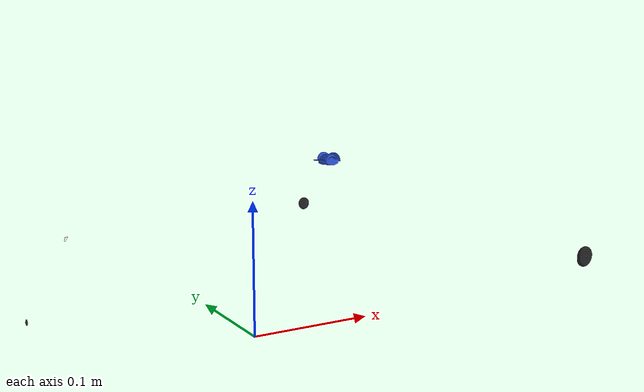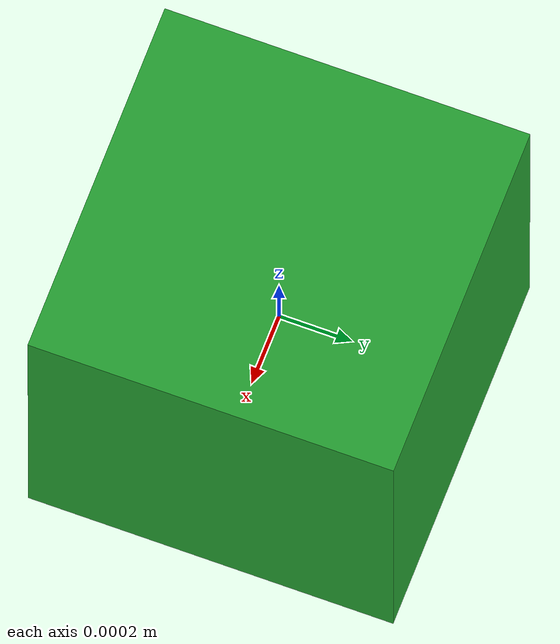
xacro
<?xml version="1.0"?>

<robot name="segbot"
    xmlns:sensor="http://playerstage.sourceforge.net/gazebo/xmlschema/#sensor"
    xmlns:controller="http://playerstage.sourceforge.net/gazebo/xmlschema/#controller"
    xmlns:interface="http://playerstage.sourceforge.net/gazebo/xmlschema/#interface">

    <!-- Included URDF Files -->
    <include filename="$(find bwi_gazebo)/urdf/segbot_base.xacro" />

    <segbot />
</robot>

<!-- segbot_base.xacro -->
<robot
    xmlns:sensor="http://playerstage.sourceforge.net/gazebo/xmlschema/#sensor"
    xmlns:controller="http://playerstage.sourceforge.net/gazebo/xmlschema/#controller"
    xmlns:interface="http://playerstage.sourceforge.net/gazebo/xmlschema/#interface">

    <!-- Included URDF Files -->
    <include filename="$(find bwi_gazebo)/urdf/materials.urdf.xacro" />
    <include filename="$(find bwi_gazebo)/urdf/segbot_wheel.xacro" />

    <macro name="segbot">
        <!-- base_footprint is a fictitious link(frame) that is on the ground right below base_link origin,
             navigation stack depends on this frame -->
        <link name="base_footprint">
            <inertial>
                <mass value="0.0001" />
                <origin xyz="0 0 0" />
                <inertia ixx="0.0001" ixy="0.0" ixz="0.0"
                         iyy="0.0001" iyz="0.0"
                         izz="0.0001" />
            </inertial>

            <visual>
                <origin xyz="0 0 0" rpy="0 0 0" />
                <geometry>
                    <box size="0.001 0.001 0.001" />
                </geometry>
                <material name="Green" />
            </visual>

            <collision>
                <origin xyz="0 0 0.128" rpy="0 0 0" />
                <geometry>
                  <box size="0.001 0.001 0.001" />
                </geometry>
            </collision>
        </link>

        <joint name="base_footprint_joint" type="fixed">
            <origin xyz="0.063 0 0.128" rpy="0 0 0" />
            <parent link="base_footprint"/>
            <child link="base_link" />
        </joint>

        <!-- Links and Joints (i.e., the robot) -->
        <link name="base_link">
            <inertial>
                <mass value="20" />
                <origin xyz="0 0 0" />
                <inertia ixx="1.0" ixy="0.0" ixz="0.0"
                         iyy="1.0" iyz="0.0"
                         izz="1.0" />
            </inertial>

            <visual>
                <origin xyz="0 0 0" rpy="0 0 0" />
                <geometry>
                    <mesh filename="package://segbot_description/meshes/rmp50-base-link.dae" scale="0.0254 0.0254 0.0254"/>
                </geometry>
                <material name="Blue" />
            </visual>

            <collision>
                <origin xyz="0 0 0" rpy="0 0 0" />
                <geometry>
                    <mesh filename="package://segbot_description/meshes/rmp50-base-link.dae" scale="0.0254 0.0254 0.0254"/>
                </geometry>
            </collision>
        </link>

        <joint name="base_caster_support_joint" type="continuous">
            <origin xyz="-0.188 0 -0.043" rpy="0 0 0" />
            <parent link="base_link" />
            <child link="base_caster_support_link"/>

            <axis xyz="0 0 1" />
            <anchor xyz="0.01 0 0" />
            <limit effort="100" velocity="100" k_velocity="0" />
            <joint_properties damping="0.0" friction="0.0" />
        </joint>

        <transmission type="pr2_mechanism_model/SimpleTransmission" name="base_caster_support_trans">
            <actuator name="base_caster_support_motor" />
            <joint name="base_caster_support_joint" />
            <mechanicalReduction>1.0</mechanicalReduction>
        </transmission>

        <link name="base_caster_support_link">
            <inertial>
                <mass value="0.1"/>
                <origin xyz="0 0 0" />
                <inertia ixx="0.01" ixy="0.0" ixz="0.0"
                         iyy="0.01" iyz="0.0"
                         izz="0.01" />
            </inertial>

            <visual>
                <origin xyz="0 0 0" rpy="0 0 0" />
                <geometry>
                    <mesh filename="package://segbot_description/meshes/rmp50-castor-link.dae" scale="0.0254 0.0254 0.0254"/>
                </geometry>
            </visual>

            <collision>
                <origin xyz="0 0 0" rpy="0 0 0" />
                <geometry>
                    <mesh filename="package://segbot_description/meshes/rmp50-castor-link.dae" scale="0.0254 0.0254 0.0254"/>
                </geometry>
            </collision>
        </link>

        <joint name="caster_wheel_joint" type="continuous">
            <origin xyz="-0.025 0 -0.0469" rpy="0 0 0" />
            <parent link="base_caster_support_link" />
            <child link="caster_wheel_link" />

            <axis xyz="0 1 0" />
            <anchor xyz="0 0 0" />
            <limit effort="100" velocity="100" k_velocity="0" />
            <joint_properties damping="0.0" friction="0.0" />
        </joint>

        <transmission type="pr2_mechanism_model/SimpleTransmission" name="caster_wheel_trans">
            <actuator name="caster_wheel_motor" />
            <joint name="caster_wheel_joint" />
            <mechanicalReduction>1.0</mechanicalReduction>
        </transmission>

        <link name="caster_wheel_link">
            <inertial>
                <mass value="0.1" />
                <origin xyz="0 0 0" rpy="0 0 0" />
                <inertia  ixx="0.012411765597" ixy="-0.000711733678" ixz="0.00050272983"
                          iyy="0.015218160428" iyz="-0.000004273467"
                          izz="0.011763977943" />
            </inertial>

            <visual>
                <origin xyz="0 0 0" rpy="0 0 0" />
                <geometry>
                    <mesh filename="package://segbot_description/meshes/rmp50-wheel.dae" scale="0.0254 0.0254 0.0254"/>
                </geometry>
                <material name="Black"/>
            </visual>

            <collision>
                <origin xyz="0 0 0" rpy="0 0 0" />
                <geometry>
                    <mesh filename="package://segbot_description/meshes/rmp50-wheel.dae" scale="0.0254 0.0254 0.0254"/>
                </geometry>
            </collision>
        </link>

        <gazebo reference="caster_wheel_link">
            <mu1 value="100.0" />
            <mu2 value="100.0" />
            <kp  value="1000000.0" />
            <kd  value="1.0" />
        </gazebo>

        <!-- MACRO INSTANTIATION -->

        <segbot_wheel suffix="left" parent="base_link">
            <origin xyz="0.075 0.16525 -0.053" rpy="0 0 0" />
        </segbot_wheel>

        <segbot_wheel suffix="right" parent="base_link">
            <origin xyz="0.075 -0.16525 -0.053" rpy="0 0 0" />
        </segbot_wheel>

        <!-- CONTROLLERS -->

        <gazebo>
            <controller:diffdrive_plugin name="differential_drive_controller" plugin="libdiffdrive_plugin.so">
                <alwaysOn>true</alwaysOn>
                <update>100</update>
                <updateRate>100.0</updateRate>
                <leftJoint>base_link_right_wheel_joint</leftJoint>
                <rightJoint>base_link_left_wheel_joint</rightJoint>
                <wheelSeparation>0.3305</wheelSeparation>
                <wheelDiameter>0.15</wheelDiameter>
                <torque>5</torque>
                <interface:position name="position_iface_0"/>
                <topicName>cmd_vel</topicName>
            </controller:diffdrive_plugin>

            <controller:gazebo_ros_p3d name="p3d_base_controller" plugin="libgazebo_ros_p3d.so">
                <alwaysOn>true</alwaysOn>
                <updateRate>100.0</updateRate>
                <bodyName>base_link</bodyName>
                <topicName>base_pose_ground_truth</topicName>
                <gaussianNoise>0.01</gaussianNoise>
                <frameName>map</frameName>
                <xyzOffsets>0 0 0</xyzOffsets>
                <rpyOffsets>0 0 0</rpyOffsets>
                <interface:position name="p3d_base_position"/>
            </controller:gazebo_ros_p3d>

            <canonicalBody>base_footprint</canonicalBody>

            <controller:gazebo_ros_controller_manager name="gazebo_ros_controller_manager" plugin="libgazebo_ros_controller_manager.so">
                <alwaysOn>true</alwaysOn>
                <updateRate>100.0</updateRate>
                <interface:audio name="gazebo_ros_controller_manager_dummy_iface" />
            </controller:gazebo_ros_controller_manager>
        </gazebo>

        <!-- GAZEBO MATERIALS -->

        <gazebo reference="base_link">
            <material>Erratic/BlueBrushedAluminum</material>
        </gazebo>

        <gazebo reference="base_top_link">
            <material>Erratic/BlueBrushedAluminum</material>
        </gazebo>

        <gazebo reference="caster_wheel_link">
            <material>Erratic/Black</material>
        </gazebo>

        <gazebo reference="base_caster_box_link">
            <material>Erratic/Black</material>
        </gazebo>

        <gazebo reference="base_caster_support_link">
            <material>Erratic/White</material>
        </gazebo>
    </macro>
</robot>

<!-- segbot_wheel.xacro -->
<robot
    xmlns:sensor="http://playerstage.sourceforge.net/gazebo/xmlschema/#sensor"
    xmlns:controller="http://playerstage.sourceforge.net/gazebo/xmlschema/#controller"
    xmlns:interface="http://playerstage.sourceforge.net/gazebo/xmlschema/#interface">

    <macro name="segbot_wheel" params="suffix parent *origin">
        <joint name="${parent}_${suffix}_wheel_joint" type="continuous">
            <insert_block name="origin" />
            <axis xyz="0 1 0" />
            <anchor xyz="0 0 0" />
            <limit effort="100" velocity="100" />
            <joint_properties damping="0.0" friction="0.0" />
            <parent link="${parent}" />
            <child link="${parent}_${suffix}_wheel_link" />
        </joint>

        <link name="${parent}_${suffix}_wheel_link">
            <inertial>
                <mass value="0.1" />
                <origin xyz=" 0 0 0 " />
                <inertia  ixx="0.012411765597" ixy="0.0" ixz="0.0"
                          iyy="0.015218160428" iyz="0.0"
                          izz="0.011763977943" />
            </inertial>

            <visual>
                <origin xyz="0 0 0" rpy="0 0 0" />
                <geometry>
                  <mesh filename="package://segbot_description/meshes/rmp50-${suffix}-wheel.dae" scale="0.0254 0.0254 0.0254"/>
                </geometry>
                <material name="Black" />
            </visual>

            <collision>
                <origin xyz="0 0 0" rpy="0 0 0" />
                <geometry>
                  <mesh filename="package://segbot_description/meshes/rmp50-${suffix}-wheel.dae" scale="0.0254 0.0254 0.0254"/>
                </geometry>
            </collision>
        </link>

        <gazebo reference="${parent}_${suffix}_wheel_link" >
            <mu1 value="100.0" />
            <mu2 value="100.0" />
            <kp  value="1000000.0" />
            <kd  value="1.0" />
            <material>Erratic/Grey</material>
        </gazebo>

        <gazebo reference="${parent}_${suffix}_motor_link" >
            <material>Erratic/White</material>
        </gazebo>

        <transmission type="pr2_mechanism_model/SimpleTransmission" name="${parent}_${suffix}_wheel_trans">
            <actuator name="${parent}_${suffix}_wheel_motor" />
            <joint name="${parent}_${suffix}_wheel_joint" />
            <mechanicalReduction>1.0</mechanicalReduction>
        </transmission>
    </macro>
</robot>
